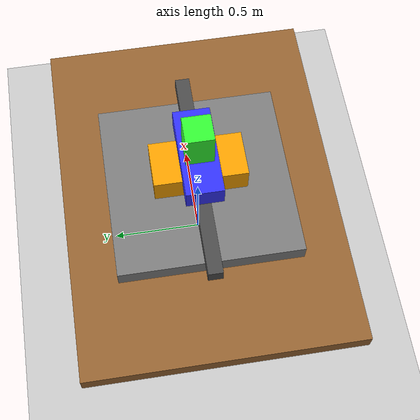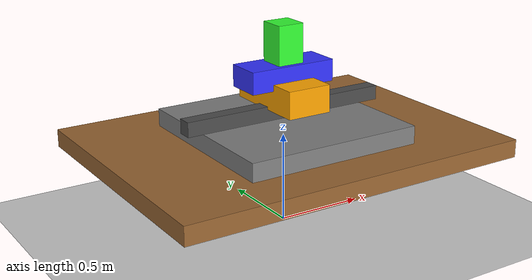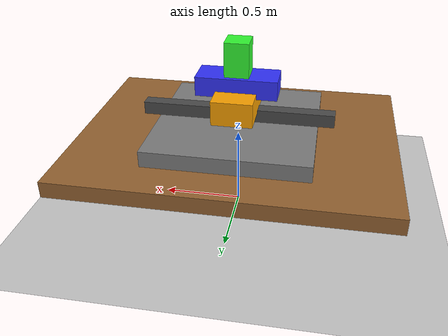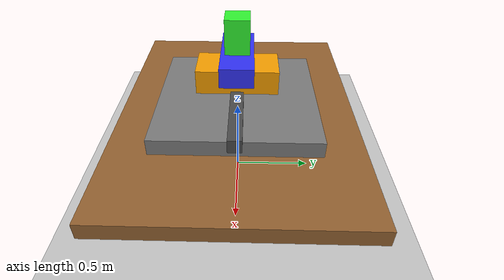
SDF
<?xml version="1.0" ?>
<sdf version="1.6">
  <world name="gantry_world">

    <!-- Physics -->
    <physics type="ode">
      <max_step_size>0.001</max_step_size>
      <real_time_factor>1</real_time_factor>
      <real_time_update_rate>1000</real_time_update_rate>
    </physics>

    <!-- Lighting -->
    <include>
      <uri>model://sun</uri>
    </include>

    <!-- Ground -->
    <include>
      <uri>model://ground_plane</uri>
    </include>

    <!-- Work Table -->
    <model name="work_table">
      <static>true</static>
      <pose>0 0 0.45 0 0 0</pose>
      <link name="table_link">
        <visual name="visual">
          <geometry>
            <box><size>2.0 1.5 0.1</size></box>
          </geometry>
          <material>
            <ambient>0.6 0.4 0.2 1</ambient>
            <diffuse>0.6 0.4 0.2 1</diffuse>
          </material>
        </visual>
        <collision name="collision">
          <geometry>
            <box><size>2.0 1.5 0.1</size></box>
          </geometry>
        </collision>
      </link>
    </model>

    <!-- GANTRY ROBOT -->
    <model name="gantry_robot">
      <pose>0 0 0.5 0 0 0</pose>

      <!-- Base (fixed to world) -->
      <link name="base_link">
        <pose>0 0 0 0 0 0</pose>
        <inertial>
          <mass>100</mass>
          <inertia>
            <ixx>10</ixx><iyy>10</iyy><izz>10</izz>
            <ixy>0</ixy><ixz>0</ixz><iyz>0</iyz>
          </inertia>
        </inertial>
        <visual name="base_visual">
          <geometry>
            <box><size>1.0 1.0 0.2</size></box>
          </geometry>
          <material>
            <ambient>0.3 0.3 0.3 1</ambient>
            <diffuse>0.5 0.5 0.5 1</diffuse>
          </material>
        </visual>
        <collision name="base_collision">
          <geometry>
            <box><size>1.0 1.0 0.2</size></box>
          </geometry>
        </collision>
      </link>

      <!-- X-axis rail -->
      <link name="x_rail">
        <pose>0 0 0.15 0 0 0</pose>
        <inertial>
          <mass>5</mass>
          <inertia>
            <ixx>0.5</ixx><iyy>0.5</iyy><izz>0.5</izz>
            <ixy>0</ixy><ixz>0</ixz><iyz>0</iyz>
          </inertia>
        </inertial>
        <visual name="x_rail_visual">
          <geometry>
            <box><size>1.2 0.08 0.08</size></box>
          </geometry>
          <material>
            <ambient>0.2 0.2 0.2 1</ambient>
            <diffuse>0.3 0.3 0.3 1</diffuse>
          </material>
        </visual>
      </link>

      <!-- X Carriage (moves along X) -->
      <link name="x_carriage">
        <pose>0 0 0.25 0 0 0</pose>
        <inertial>
          <mass>20</mass>
          <inertia>
            <ixx>1</ixx><iyy>1</iyy><izz>1</izz>
            <ixy>0</ixy><ixz>0</ixz><iyz>0</iyz>
          </inertia>
        </inertial>
        <visual name="x_carriage_visual">
          <geometry>
            <box><size>0.25 0.5 0.15</size></box>
          </geometry>
          <material>
            <ambient>1.0 0.5 0.0 1</ambient>
            <diffuse>1.0 0.647 0.0 1</diffuse>
          </material>
        </visual>
        <collision name="x_carriage_collision">
          <geometry>
            <box><size>0.25 0.5 0.15</size></box>
          </geometry>
        </collision>
      </link>

      <!-- Y Carriage (moves along Y) -->
      <link name="y_carriage">
        <pose>0 0 0.35 0 0 0</pose>
        <inertial>
          <mass>15</mass>
          <inertia>
            <ixx>1</ixx><iyy>1</iyy><izz>1</izz>
            <ixy>0</ixy><ixz>0</ixz><iyz>0</iyz>
          </inertia>
        </inertial>
        <visual name="y_carriage_visual">
          <geometry>
            <box><size>0.5 0.2 0.12</size></box>
          </geometry>
          <material>
            <ambient>0.0 0.0 1.0 1</ambient>
            <diffuse>0.2 0.2 1.0 1</diffuse>
          </material>
        </visual>
        <collision name="y_carriage_collision">
          <geometry>
            <box><size>0.5 0.2 0.12</size></box>
          </geometry>
        </collision>
      </link>

      <!-- Z Carriage (moves along Z) -->
      <link name="z_carriage">
        <pose>0 0 0.5 0 0 0</pose>
        <inertial>
          <mass>10</mass>
          <inertia>
            <ixx>0.5</ixx><iyy>0.5</iyy><izz>0.5</izz>
            <ixy>0</ixy><ixz>0</ixz><iyz>0</iyz>
          </inertia>
        </inertial>
        <visual name="z_carriage_visual">
          <geometry>
            <box><size>0.15 0.15 0.25</size></box>
          </geometry>
          <material>
            <ambient>0.0 1.0 0.0 1</ambient>
            <diffuse>0.2 1.0 0.2 1</diffuse>
          </material>
        </visual>
        <collision name="z_carriage_collision">
          <geometry>
            <box><size>0.15 0.15 0.25</size></box>
          </geometry>
        </collision>
      </link>

      <!-- End Effector -->
      <link name="end_effector">
        <pose>0 0 0.35 0 0 0</pose>
        <inertial>
          <mass>2</mass>
          <inertia>
            <ixx>0.1</ixx><iyy>0.1</iyy><izz>0.1</izz>
            <ixy>0</ixy><ixz>0</ixz><iyz>0</iyz>
          </inertia>
        </inertial>
        <visual name="tool_visual">
          <pose>0 0 0 0 0 0</pose>
          <geometry>
            <cylinder><radius>0.04</radius><length>0.1</length></cylinder>
          </geometry>
          <material>
            <ambient>1.0 0.0 0.0 1</ambient>
            <diffuse>1.0 0.2 0.2 1</diffuse>
          </material>
        </visual>
        <visual name="gripper_visual">
          <pose>0 0 -0.08 0 0 0</pose>
          <geometry>
            <cylinder><radius>0.06</radius><length>0.02</length></cylinder>
          </geometry>
          <material>
            <ambient>1.0 1.0 0.0 1</ambient>
            <diffuse>1.0 1.0 0.2 1</diffuse>
          </material>
        </visual>
      </link>

      <!-- JOINTS -->

      <!-- Fix base to world -->
      <joint name="world_joint" type="fixed">
        <parent>world</parent>
        <child>base_link</child>
      </joint>

      <!-- Fix rail to base -->
      <joint name="rail_joint" type="fixed">
        <parent>base_link</parent>
        <child>x_rail</child>
      </joint>

      <!-- X axis (prismatic) -->
      <joint name="joint_x" type="prismatic">
        <parent>base_link</parent>
        <child>x_carriage</child>
        <axis>
          <xyz>1 0 0</xyz>
          <limit>
            <lower>-0.4</lower>
            <upper>0.4</upper>
            <effort>100</effort>
            <velocity>1.0</velocity>
          </limit>
          <dynamics>
            <damping>10</damping>
            <friction>5</friction>
          </dynamics>
        </axis>
      </joint>

      <!-- Y axis (prismatic) -->
      <joint name="joint_y" type="prismatic">
        <parent>x_carriage</parent>
        <child>y_carriage</child>
        <axis>
          <xyz>0 1 0</xyz>
          <limit>
            <lower>-0.3</lower>
            <upper>0.3</upper>
            <effort>100</effort>
            <velocity>1.0</velocity>
          </limit>
          <dynamics>
            <damping>10</damping>
            <friction>5</friction>
          </dynamics>
        </axis>
      </joint>

      <!-- Z axis (prismatic) -->
      <joint name="joint_z" type="prismatic">
        <parent>y_carriage</parent>
        <child>z_carriage</child>
        <axis>
          <xyz>0 0 1</xyz>
          <limit>
            <lower>-0.5</lower>
            <upper>0.5</upper>
            <effort>100</effort>
            <velocity>1.0</velocity>
          </limit>
          <dynamics>
            <damping>10</damping>
            <friction>5</friction>
          </dynamics>
        </axis>
      </joint>

      <!-- End effector (fixed to z_carriage) -->
      <joint name="tool_joint" type="fixed">
        <parent>z_carriage</parent>
        <child>end_effector</child>
        <pose>0 0 -0.2 0 0 0</pose>
      </joint>

    </model>

    <!-- Sample objects for pick and place -->
    <model name="box_1">
      <pose>0.3 0.2 0.55 0 0 0</pose>
      <link name="link">
        <inertial>
          <mass>0.5</mass>
          <inertia>
            <ixx>0.001</ixx><iyy>0.001</iyy><izz>0.001</izz>
            <ixy>0</ixy><ixz>0</ixz><iyz>0</iyz>
          </inertia>
        </inertial>
        <visual name="visual">
          <geometry>
            <box><size>0.05 0.05 0.05</size></box>
          </geometry>
          <material>
            <ambient>0.0 0.0 1.0 1</ambient>
            <diffuse>0.0 0.2 1.0 1</diffuse>
          </material>
        </visual>
        <collision name="collision">
          <geometry>
            <box><size>0.05 0.05 0.05</size></box>
          </geometry>
        </collision>
      </link>
    </model>

    <model name="box_2">
      <pose>-0.3 0.2 0.55 0 0 0</pose>
      <link name="link">
        <inertial>
          <mass>0.5</mass>
          <inertia>
            <ixx>0.001</ixx><iyy>0.001</iyy><izz>0.001</izz>
            <ixy>0</ixy><ixz>0</ixz><iyz>0</iyz>
          </inertia>
        </inertial>
        <visual name="visual">
          <geometry>
            <box><size>0.05 0.05 0.05</size></box>
          </geometry>
          <material>
            <ambient>0.0 1.0 0.0 1</ambient>
            <diffuse>0.2 1.0 0.2 1</diffuse>
          </material>
        </visual>
        <collision name="collision">
          <geometry>
            <box><size>0.05 0.05 0.05</size></box>
          </geometry>
        </collision>
      </link>
    </model>

    <model name="cylinder_1">
      <pose>0.0 -0.2 0.55 0 0 0</pose>
      <link name="link">
        <inertial>
          <mass>0.3</mass>
          <inertia>
            <ixx>0.001</ixx><iyy>0.001</iyy><izz>0.001</izz>
            <ixy>0</ixy><ixz>0</ixz><iyz>0</iyz>
          </inertia>
        </inertial>
        <visual name="visual">
          <geometry>
            <cylinder><radius>0.025</radius><length>0.06</length></cylinder>
          </geometry>
          <material>
            <ambient>1.0 0.0 0.0 1</ambient>
            <diffuse>1.0 0.2 0.2 1</diffuse>
          </material>
        </visual>
        <collision name="collision">
          <geometry>
            <cylinder><radius>0.025</radius><length>0.06</length></cylinder>
          </geometry>
        </collision>
      </link>
    </model>

    <!-- Camera position -->
    <gui fullscreen='0'>
      <camera name='user_camera'>
        <pose>2.5 -2.5 2.0 0 0.4 2.35</pose>
        <view_controller>orbit</view_controller>
      </camera>
    </gui>

  </world>
</sdf>
